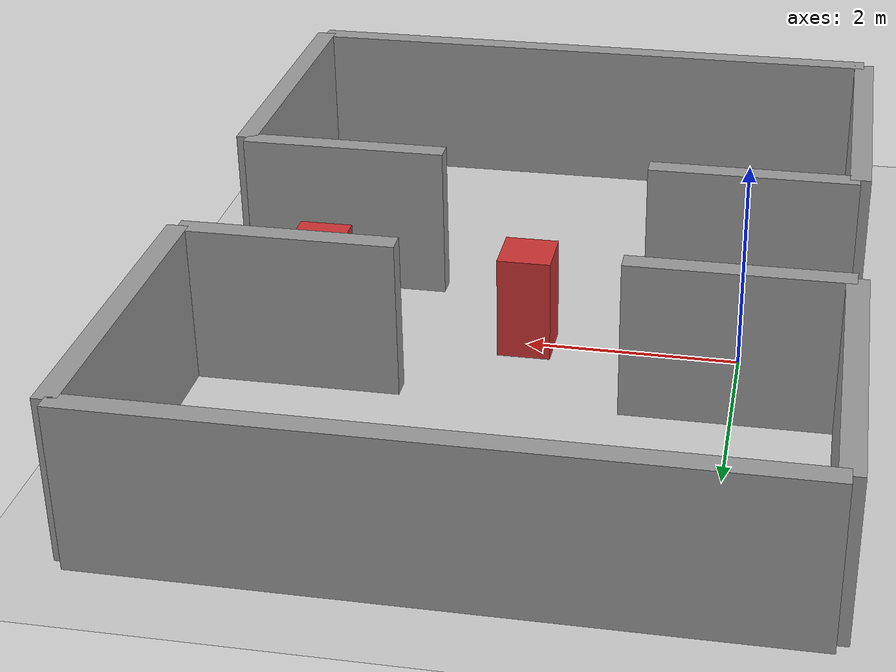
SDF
<?xml version="1.0"?>

<sdf version="1.9">

    <world name="lidar_world">

        <!-- Physics simulation -->
        <plugin
            filename="gz-sim-physics-system"
            name="gz::sim::systems::Physics">
        </plugin>

        <!-- Allows spawning, moving and deleting entities -->
        <plugin
            filename="gz-sim-user-commands-system"
            name="gz::sim::systems::UserCommands">
        </plugin>

        <!-- Sends scene information to Gazebo GUI -->
        <plugin
            filename="gz-sim-scene-broadcaster-system"
            name="gz::sim::systems::SceneBroadcaster">
        </plugin>

        <!-- Required for GPU lidar and camera sensors -->
        <plugin
            filename="gz-sim-sensors-system"
            name="gz::sim::systems::Sensors">

            <render_engine>ogre2</render_engine>
        </plugin>

        <!-- Physics settings -->
        <physics name="physics" type="ignored">
            <max_step_size>0.001</max_step_size>
            <real_time_factor>1.0</real_time_factor>
        </physics>

        <!-- Directional light -->
        <light type="directional" name="sun">
            <cast_shadows>true</cast_shadows>

            <pose>0 0 10 0 0 0</pose>

            <diffuse>0.8 0.8 0.8 1</diffuse>
            <specular>0.2 0.2 0.2 1</specular>

            <attenuation>
                <range>1000</range>
                <constant>0.9</constant>
                <linear>0.01</linear>
                <quadratic>0.001</quadratic>
            </attenuation>

            <direction>-0.5 0.1 -0.9</direction>
        </light>

        <!-- Ground plane -->
        <model name="ground_plane">
            <static>true</static>

            <link name="link">

                <collision name="collision">
                    <geometry>
                        <plane>
                            <normal>0 0 1</normal>
                            <size>100 100</size>
                        </plane>
                    </geometry>
                </collision>

                <visual name="visual">
                    <geometry>
                        <plane>
                            <normal>0 0 1</normal>
                            <size>100 100</size>
                        </plane>
                    </geometry>

                    <material>
                        <ambient>0.8 0.8 0.8 1</ambient>
                        <diffuse>0.8 0.8 0.8 1</diffuse>
                    </material>
                </visual>

            </link>
        </model>

        <!-- ============ 房间 A（北边） y∈[1,4] ============ -->
        <!-- A 北墙（保留你写的，没动） -->
        <model name="wall_a_north">
            <static>true</static>
            <pose>2 4 0.75 0 0 0</pose>
            <link name="link">
                <collision name="collision">
                    <geometry>
                        <box><size>6.0 0.2 1.5</size></box>
                    </geometry>
                </collision>
                <visual name="visual">
                    <geometry>
                        <box><size>6.0 0.2 1.5</size></box>
                    </geometry>
                    <material>
                        <ambient>0.6 0.6 0.6 1</ambient>
                        <diffuse>0.6 0.6 0.6 1</diffuse>
                    </material>
                </visual>
            </link>
        </model>
        <!-- A 西墙 -->
        <model name="wall_a_west">
            <static>true</static>
            <pose>-1 2.5 0.75 0 0 0</pose>
            <link name="link">
                <collision name="collision">
                    <geometry>
                        <box><size>0.2 3.0 1.5</size></box>
                    </geometry>
                </collision>
                <visual name="visual">
                    <geometry>
                        <box><size>0.2 3.0 1.5</size></box>
                    </geometry>
                    <material>
                        <ambient>0.6 0.6 0.6 1</ambient>
                        <diffuse>0.6 0.6 0.6 1</diffuse>
                    </material>
                </visual>
            </link>
        </model>
        <!-- A 东墙 -->
        <model name="wall_a_east">
            <static>true</static>
            <pose>5 2.5 0.75 0 0 0</pose>
            <link name="link">
                <collision name="collision">
                    <geometry>
                        <box><size>0.2 3.0 1.5</size></box>
                    </geometry>
                </collision>
                <visual name="visual">
                    <geometry>
                        <box><size>0.2 3.0 1.5</size></box>
                    </geometry>
                    <material>
                        <ambient>0.6 0.6 0.6 1</ambient>
                        <diffuse>0.6 0.6 0.6 1</diffuse>
                    </material>
                </visual>
            </link>
        </model>
        <!-- A 南墙西段（门口 x∈[1,3] 宽 2m） -->
        <model name="wall_a_south_w">
            <static>true</static>
            <pose>0 1 0.75 0 0 0</pose>
            <link name="link">
                <collision name="collision">
                    <geometry>
                        <box><size>2.0 0.2 1.5</size></box>
                    </geometry>
                </collision>
                <visual name="visual">
                    <geometry>
                        <box><size>2.0 0.2 1.5</size></box>
                    </geometry>
                    <material>
                        <ambient>0.6 0.6 0.6 1</ambient>
                        <diffuse>0.6 0.6 0.6 1</diffuse>
                    </material>
                </visual>
            </link>
        </model>
        <!-- A 南墙东段 -->
        <model name="wall_a_south_e">
            <static>true</static>
            <pose>4 1 0.75 0 0 0</pose>
            <link name="link">
                <collision name="collision">
                    <geometry>
                        <box><size>2.0 0.2 1.5</size></box>
                    </geometry>
                </collision>
                <visual name="visual">
                    <geometry>
                        <box><size>2.0 0.2 1.5</size></box>
                    </geometry>
                    <material>
                        <ambient>0.6 0.6 0.6 1</ambient>
                        <diffuse>0.6 0.6 0.6 1</diffuse>
                    </material>
                </visual>
            </link>
        </model>
        <!-- ============ 房间 B（南边） y∈[-4,-1] ============ -->
        <!-- B 北墙西段（门口 x∈[1,3]） -->
        <model name="wall_b_north_w">
            <static>true</static>
            <pose>0 -1 0.75 0 0 0</pose>
            <link name="link">
                <collision name="collision">
                    <geometry>
                        <box><size>2.0 0.2 1.5</size></box>
                    </geometry>
                </collision>
                <visual name="visual">
                    <geometry>
                        <box><size>2.0 0.2 1.5</size></box>
                    </geometry>
                    <material>
                        <ambient>0.6 0.6 0.6 1</ambient>
                        <diffuse>0.6 0.6 0.6 1</diffuse>
                    </material>
                </visual>
            </link>
        </model>
        <!-- B 北墙东段 -->
        <model name="wall_b_north_e">
            <static>true</static>
            <pose>4 -1 0.75 0 0 0</pose>
            <link name="link">
                <collision name="collision">
                    <geometry>
                        <box><size>2.0 0.2 1.5</size></box>
                    </geometry>
                </collision>
                <visual name="visual">
                    <geometry>
                        <box><size>2.0 0.2 1.5</size></box>
                    </geometry>
                    <material>
                        <ambient>0.6 0.6 0.6 1</ambient>
                        <diffuse>0.6 0.6 0.6 1</diffuse>
                    </material>
                </visual>
            </link>
        </model>
        <!-- B 西墙 -->
        <model name="wall_b_west">
            <static>true</static>
            <pose>-1 -2.5 0.75 0 0 0</pose>
            <link name="link">
                <collision name="collision">
                    <geometry>
                        <box><size>0.2 3.0 1.5</size></box>
                    </geometry>
                </collision>
                <visual name="visual">
                    <geometry>
                        <box><size>0.2 3.0 1.5</size></box>
                    </geometry>
                    <material>
                        <ambient>0.6 0.6 0.6 1</ambient>
                        <diffuse>0.6 0.6 0.6 1</diffuse>
                    </material>
                </visual>
            </link>
        </model>
        <!-- B 东墙 -->
        <model name="wall_b_east">
            <static>true</static>
            <pose>5 -2.5 0.75 0 0 0</pose>
            <link name="link">
                <collision name="collision">
                    <geometry>
                        <box><size>0.2 3.0 1.5</size></box>
                    </geometry>
                </collision>
                <visual name="visual">
                    <geometry>
                        <box><size>0.2 3.0 1.5</size></box>
                    </geometry>
                    <material>
                        <ambient>0.6 0.6 0.6 1</ambient>
                        <diffuse>0.6 0.6 0.6 1</diffuse>
                    </material>
                </visual>
            </link>
        </model>
        <!-- B 南墙（长 6，同 A 北墙） -->
        <model name="wall_b_south">
            <static>true</static>
            <pose>2 -4 0.75 0 0 0</pose>
            <link name="link">
                <collision name="collision">
                    <geometry>
                        <box><size>6.0 0.2 1.5</size></box>
                    </geometry>
                </collision>
                <visual name="visual">
                    <geometry>
                        <box><size>6.0 0.2 1.5</size></box>
                    </geometry>
                    <material>
                        <ambient>0.6 0.6 0.6 1</ambient>
                        <diffuse>0.6 0.6 0.6 1</diffuse>
                    </material>
                </visual>
            </link>
        </model>

        <!-- box for lidar testing -->
        <model name="test_box_1">
            <static>true</static>

            <!-- Two metres in front of the robot -->
            <pose>2.0 0.0 0.5 0 0 0</pose>

            <link name="link">

                <collision name="collision">
                    <geometry>
                        <box>
                            <size>0.5 0.5 1.0</size>
                        </box>
                    </geometry>
                </collision>

                <visual name="visual">
                    <geometry>
                        <box>
                            <size>0.5 0.5 1.0</size>
                        </box>
                    </geometry>

                    <material>
                        <ambient>0.8 0.2 0.2 1</ambient>
                        <diffuse>0.8 0.2 0.2 1</diffuse>
                    </material>
                </visual>

            </link>
        </model>

        <!-- box for lidar testing -->
        <model name="test_box_2">
            <static>true</static>

            <!-- Four metres in front of the robot -->
            <pose>4.0 0.0 0.5 0 0 0</pose>

            <link name="link">

                <collision name="collision">
                    <geometry>
                        <box>
                            <size>0.5 0.5 1.0</size>
                        </box>
                    </geometry>
                </collision>

                <visual name="visual">
                    <geometry>
                        <box>
                            <size>0.5 0.5 1.0</size>
                        </box>
                    </geometry>

                    <material>
                        <ambient>0.8 0.2 0.2 1</ambient>
                        <diffuse>0.8 0.2 0.2 1</diffuse>
                    </material>
                </visual>

            </link>
        </model>

    </world>

</sdf>
